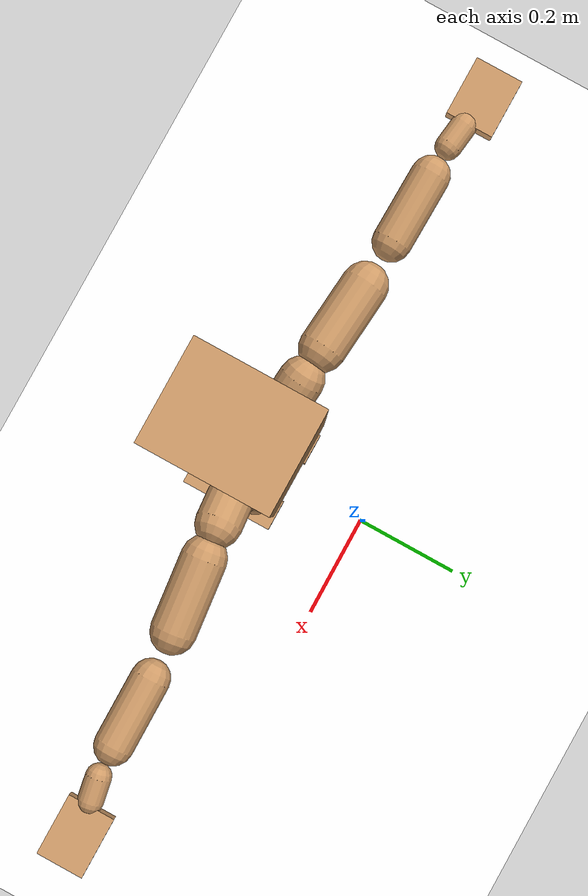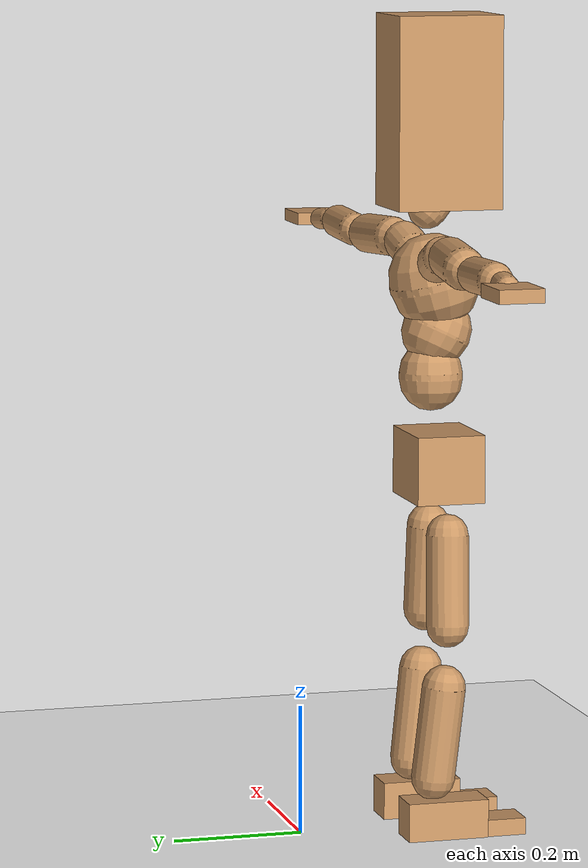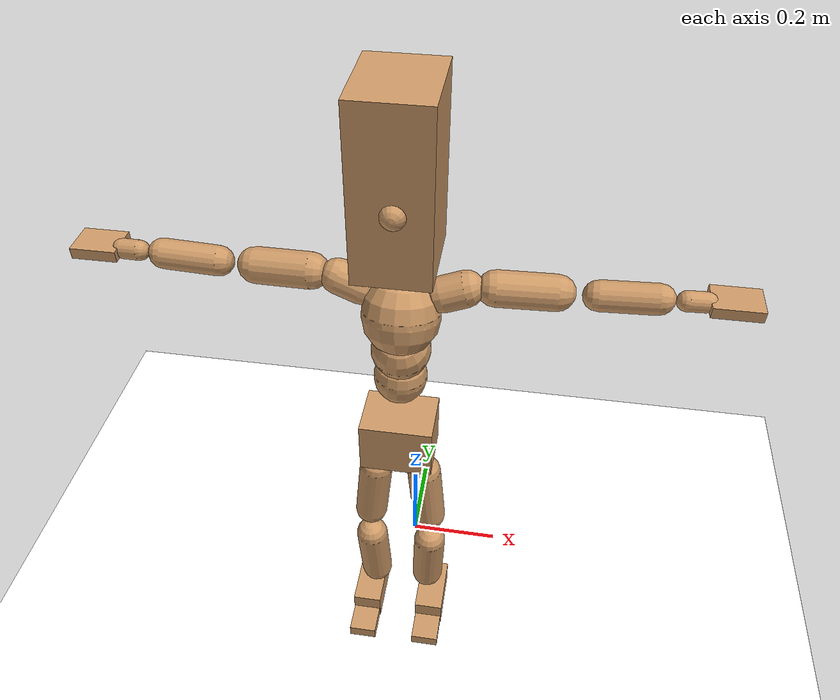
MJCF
<mujoco model="humanoid">
  <option integrator="implicitfast" />

  <visual>
    <global offwidth="1280" offheight="960" />
    <headlight active="1" ambient="0.34 0.34 0.34" diffuse="0.5 0.5 0.5" />
  </visual>

  <default>
    <joint damping="2" stiffness="2" armature="0.01" limited="true" solimplimit="0 .99 .01" />
    <geom condim="1" friction="0.7 0.005 0.0001" solimp=".99 .99 .003" solref="0.015 1" margin="0.001" rgba="0.8 0.6 .4 1" />
    <default class="smplcontact">
      <geom condim="3" friction="1. 0.005 0.0001" solref="0.015 1" solimp="0.98 0.98 0.001" priority="1" />
    </default>
    <default class="stiff_medium">
      <joint stiffness="10" />
    </default>
    <default class="stiff_medium_higher">
      <joint stiffness="50" />
    </default>
    <default class="stiff_high">
      <joint stiffness="100" />
    </default>
  </default>

  <asset>
    <texture type="skybox" builtin="gradient" rgb1="0.99 0.99 0.99" rgb2="0.608 0.828 0.892" width="100" />
    <texture builtin="flat" height="1278" mark="cross" markrgb="1 1 1" name="texgeom" random="0.01" rgb1="0.8 0.6 0.4" rgb2="0.8 0.6 0.4" type="cube" width="127" />
    <texture name="texplane" type="2d" builtin="checker" markrgb="1 1 1" rgb1="0.756 0.772 0.76" rgb2="0.6 0.6 0.6" width="100" height="100" />
    <material name="MatPlane" reflectance="0.5" texture="texplane" texrepeat="1 1" texuniform="true" />
    <material name="geom" texture="texgeom" texuniform="true" />
  </asset>

  <worldbody>
    <light name="tracking_light" pos="0 0 7" dir="0 0 -1" directional="true" cutoff="100" exponent="1" diffuse="1 1 1" specular="0.1 0.1 0.1" mode="trackcom" />
    <camera name="back" pos="0 3 2.4" xyaxes="-1 0 0 0 -1 2" mode="trackcom" />
    <camera name="side" pos="-3 0 2.4" xyaxes="0 -1 0 1 0 2" mode="trackcom" />
    <camera name="front_side" pos="-2.8 -2.8 0.8" xyaxes="0.5 -0.5 0 0.1 0.1 1" mode="trackcom" />
    <geom condim="3" name="floor" pos="0 0 0" rgba="1 1 1 1" size="100 100 .2" type="plane" material="MatPlane" />
    <body name="Pelvis" pos="-0.0018 -0.2233 0.57723" euler="90 0 0">
      <site name="Pelvis" size="0.01" />
      <freejoint name="Pelvis" />
      <geom type="box" pos="0 -0.00879221 -0.00352" size="0.068416 0.0524626 0.05312" quat="1.0000 0.0000 0.0000 0.0000" density="3165.830099" name="Pelvis" />
      <body name="L_Hip" pos="0.04448 -0.0664139 -0.004352">
        <joint name="L_Hip_x" type="hinge" pos="0 0 0" axis="1 0 0" stiffness="10" range="-160.0 22.92" class="stiff_medium" damping="15" />
        <joint name="L_Hip_y" type="hinge" pos="0 0 0" axis="0 1 0" stiffness="10" range="-70.0 70.0" class="stiff_medium" damping="10" />
        <joint name="L_Hip_z" type="hinge" pos="0 0 0" axis="0 0 1" stiffness="10" range="-28.65 90.0" class="stiff_medium" damping="10" />
        <geom type="capsule" density="2040.816327" fromto="0.00415456 -0.0452039 -0.000542401 0.0165102 -0.180935 -0.00216973" size="0.0335175" name="L_Hip" />
        <body name="L_Knee" pos="0.0206648 -0.226139 -0.00271213">
          <joint name="L_Knee_x" type="hinge" pos="0 0 0" axis="1 0 0" range="-5.16 171.89" damping="8" />
          <joint name="L_Knee_y" type="hinge" pos="0 0 0" axis="0 1 0" range="-4.58 6.88" damping="8" />
          <joint name="L_Knee_z" type="hinge" pos="0 0 0" axis="0 0 1" range="-6.88 4.58" damping="8" />
          <geom type="capsule" density="1234.567901" fromto="-0.00162676 -0.0479762 -0.00524247 -0.00656901 -0.191904 -0.0210939" size="0.033542" name="L_Knee" />
          <body name="L_Ankle" pos="-0.00819577 -0.23988 -0.0263363">
            <joint name="L_Ankle_x" type="hinge" pos="0 0 0" axis="1 0 0" range="-45.84 45.84" class="stiff_medium" damping="6" />
            <joint name="L_Ankle_y" type="hinge" pos="0 0 0" axis="0 1 0" range="-74.48 22.92" class="stiff_medium" damping="3" />
            <joint name="L_Ankle_z" type="hinge" pos="0 0 0" axis="0 0 1" range="-4.58 4.58" class="stiff_medium" damping="6" />
            <geom type="box" pos="0.0145625 -0.0149375 0.017673" size="0.0301875 0.029 0.0620746" quat="1.0000 0.0000 0.0000 0.0000" density="449.071558" name="L_Ankle" class="smplcontact" />
            <body name="L_Toe" pos="0.0165 -0.034875 0.0871235">
              <joint name="L_Toe_x" type="hinge" pos="0 0 0" axis="1 0 0" range="-91.67 22.92" />
              <joint name="L_Toe_y" type="hinge" pos="0 0 0" axis="0 1 0" range="-4.58 4.58" />
              <joint name="L_Toe_z" type="hinge" pos="0 0 0" axis="0 0 1" range="-4.58 4.58" />
              <geom type="box" pos="-0.0018 0.0033 0.0181112" size="0.02868 0.012 0.0362223" quat="1.0000 0.0000 0.0000 0.0000" density="423.206892" name="L_Toe" class="smplcontact" />
            </body>
          </body>
        </body>
      </body>
      <body name="R_Hip" pos="-0.043328 -0.0657599 -0.002752">
        <joint name="R_Hip_x" type="hinge" pos="0 0 0" axis="1 0 0" stiffness="10" range="-160.0 22.92" class="stiff_medium" damping="15" />
        <joint name="R_Hip_y" type="hinge" pos="0 0 0" axis="0 1 0" stiffness="10" range="-70.0 70.0" class="stiff_medium" damping="10" />
        <joint name="R_Hip_z" type="hinge" pos="0 0 0" axis="0 0 1" stiffness="10" range="-90.0 28.65" class="stiff_medium" damping="10" />
        <geom type="capsule" density="2040.816327" fromto="-0.0046369 -0.0461081 -0.00108293 -0.0184391 -0.184491 -0.00427731" size="0.033027" name="R_Hip" />
        <body name="R_Knee" pos="-0.023076 -0.230599 -0.00536024">
          <joint name="R_Knee_x" type="hinge" pos="0 0 0" axis="1 0 0" range="-5.16 171.89" damping="8" />
          <joint name="R_Knee_y" type="hinge" pos="0 0 0" axis="0 1 0" range="-6.88 4.58" damping="8" />
          <joint name="R_Knee_z" type="hinge" pos="0 0 0" axis="0 0 1" range="-4.58 6.88" damping="8" />
          <geom type="capsule" density="1234.567901" fromto="0.00192981 -0.0480361 -0.00512414 0.00759532 -0.192085 -0.0203728" size="0.033542" name="R_Knee" />
          <body name="R_Ankle" pos="0.00952513 -0.240121 -0.0254969">
            <joint name="R_Ankle_x" type="hinge" pos="0 0 0" axis="1 0 0" range="-45.84 45.84" class="stiff_medium" damping="6" />
            <joint name="R_Ankle_y" type="hinge" pos="0 0 0" axis="0 1 0" range="-22.92 74.48" class="stiff_medium" damping="3" />
            <joint name="R_Ankle_z" type="hinge" pos="0 0 0" axis="0 0 1" range="-4.58 4.58" class="stiff_medium" damping="6" />
            <geom type="box" pos="-0.01325 -0.010875 0.0186954" size="0.0301875 0.029875 0.06317" quat="1.0000 0.0000 0.0000 0.0000" density="434.700981" name="R_Ankle" class="smplcontact" />
            <body name="R_Toe" pos="-0.015875 -0.0300625 0.0900446">
              <joint name="R_Toe_x" type="hinge" pos="0 0 0" axis="1 0 0" range="-91.67 22.92" />
              <joint name="R_Toe_y" type="hinge" pos="0 0 0" axis="0 1 0" range="-4.58 4.58" />
              <joint name="R_Toe_z" type="hinge" pos="0 0 0" axis="0 0 1" range="-4.58 4.58" />
              <geom type="box" pos="0.00252 0.0027 0.0165776" size="0.02874 0.01296 0.0360033" quat="1.0000 0.0000 0.0000 0.0000" density="407.384095" name="R_Toe" class="smplcontact" />
            </body>
          </body>
        </body>
      </body>
      <body name="Torso" pos="-0.0016 0.0792026 -0.017088">
        <joint name="Torso_x" type="hinge" pos="0 0 0" axis="1 0 0" range="-25.78 57.3" class="stiff_medium" damping="15" />
        <joint name="Torso_y" type="hinge" pos="0 0 0" axis="0 1 0" range="-57.3 57.3" class="stiff_high" damping="20" />
        <joint name="Torso_z" type="hinge" pos="0 0 0" axis="0 0 1" range="-34.38 34.38" class="stiff_high" damping="20" />
        <geom type="capsule" density="2040.816327" fromto="0.00181683 0.0447999 0.000363366 0.00218524 0.054747 0.000437048" size="0.0488315" name="Torso" />
        <body name="Spine" pos="0.00400245 0.0996206 0.00080049">
          <joint name="Spine_x" type="hinge" pos="0 0 0" axis="1 0 0" stiffness="10" range="-25.78 57.3" class="stiff_medium" damping="15" />
          <joint name="Spine_y" type="hinge" pos="0 0 0" axis="0 1 0" stiffness="10" range="-57.3 57.3" class="stiff_high" damping="8" />
          <joint name="Spine_z" type="hinge" pos="0 0 0" axis="0 0 1" stiffness="20" range="-34.38 34.38" class="stiff_high" damping="12" />
          <geom type="capsule" density="2040.816327" fromto="0.000507728 0.0175331 0.00840693 0.00058141 0.0214383 0.0103227" size="0.0532275" name="Spine" />
          <body name="Chest" pos="0.00108914 0.0389713 0.0187296">
            <joint name="Chest_x" type="hinge" pos="0 0 0" axis="1 0 0" stiffness="10" range="-25.78 57.3" class="stiff_medium" damping="15" />
            <joint name="Chest_y" type="hinge" pos="0 0 0" axis="0 1 0" stiffness="10" range="-57.3 57.3" class="stiff_high" damping="8" />
            <joint name="Chest_z" type="hinge" pos="0 0 0" axis="0 0 1" stiffness="20" range="-34.38 34.38" class="stiff_high" damping="12" />
            <geom type="capsule" density="2040.816327" fromto="-0.000639882 0.0502476 -0.0127624 -0.000713564 0.0613737 -0.015636" size="0.068637" name="Chest" />
            <body name="Neck" pos="-0.00199039 0.157452 -0.0322097">
              <joint name="Neck_x" type="hinge" pos="0 0 0" axis="1 0 0" range="-28.65 57.3" class="stiff_medium_higher" damping="10" />
              <joint name="Neck_y" type="hinge" pos="0 0 0" axis="0 1 0" range="-40.11 40.11" class="stiff_medium_higher" damping="10" />
              <joint name="Neck_z" type="hinge" pos="0 0 0" axis="0 0 1" range="-40.11 40.11" class="stiff_medium_higher" damping="10" />
              <geom type="capsule" density="1000" fromto="0.000731506 0.00949427 0.00752121 0.0029954 0.0379755 0.0300141" size="0.030302" name="Neck" />
              <body name="Head" pos="0.00379629 0.0474683 0.0374646">
                <joint name="Head_x" type="hinge" pos="0 0 0" axis="1 0 0" range="-28.65 57.3" class="stiff_medium_higher" damping="2" />
                <joint name="Head_y" type="hinge" pos="0 0 0" axis="0 1 0" range="-40.11 40.11" class="stiff_medium_higher" damping="2" />
                <joint name="Head_z" type="hinge" pos="0 0 0" axis="0 0 1" range="-40.11 40.11" class="stiff_medium_higher" damping="2" />
                <geom type="box" pos="-0.00449148 0.111241 -0.012405" size="0.0648056 0.146543 0.0812744" quat="1.0000 0.0000 0.0000 0.0000" density="1018.069894" name="Head" />
                <geom type="capsule" name="nose" size="0.021388 0.010694" pos="0 0.0888908 0.05347" quat="1 0 0 0" mass="0" contype="0" conaffinity="0" />
              </body>
            </body>
            <body name="L_Thorax" pos="0.0539362 0.0896794 -0.0249895">
              <joint name="L_Thorax_x" type="hinge" pos="0 0 0" axis="1 0 0" range="-10.89 4.58" class="stiff_medium_higher" damping="20" />
              <joint name="L_Thorax_y" type="hinge" pos="0 0 0" axis="0 1 0" range="-28.65 17.19" class="stiff_medium_higher" damping="20" />
              <joint name="L_Thorax_z" type="hinge" pos="0 0 0" axis="0 0 1" range="-31.51 40.11" class="stiff_medium_higher" damping="20" />
              <geom type="capsule" density="1000" fromto="0.0130442 0.00437195 -0.00128631 0.0521757 0.0174875 -0.0050848" size="0.0314476" name="L_Thorax" />
              <body name="L_Shoulder" pos="0.0652199 0.0218594 -0.00637111">
                <joint name="L_Shoulder_x" type="hinge" pos="0 0 0" axis="1 0 0" range="-97.4 97.4" class="stiff_medium" damping="6" />
                <joint name="L_Shoulder_y" type="hinge" pos="0 0 0" axis="0 1 0" range="-108.86 80.21" class="stiff_medium" damping="6" />
                <joint name="L_Shoulder_z" type="hinge" pos="0 0 0" axis="0 0 1" range="-97.4 85.94" class="stiff_medium" damping="6" />
                <geom type="capsule" density="1000" fromto="0.0339879 -0.00169892 -0.0036016 0.136016 -0.00667592 -0.0144069" size="0.03102" name="L_Shoulder" />
                <body name="L_Elbow" pos="0.170004 -0.00837484 -0.0180085">
                  <joint name="L_Elbow_x" type="hinge" pos="0 0 0" axis="1 0 0" range="-17.19 4.58" damping="5" />
                  <joint name="L_Elbow_y" type="hinge" pos="0 0 0" axis="0 1 0" range="-180.0 17.19" damping="5" />
                  <joint name="L_Elbow_z" type="hinge" pos="0 0 0" axis="0 0 1" range="-100.84 4.58" damping="5" />
                  <geom type="capsule" density="1000" fromto="0.0326124 0.00117875 -0.000131134 0.130581 0.00471504 -0.000589542" size="0.026325" name="L_Elbow" />
                  <body name="L_Wrist" pos="0.163193 0.00589379 -0.000785676">
                    <joint name="L_Wrist_x" type="hinge" pos="0 0 0" axis="1 0 0" range="-180.0 22.92" />
                    <joint name="L_Wrist_y" type="hinge" pos="0 0 0" axis="0 1 0" range="-17.19 17.19" />
                    <joint name="L_Wrist_z" type="hinge" pos="0 0 0" axis="0 0 1" range="-22.92 22.92" />
                    <geom type="capsule" density="1000" fromto="0.0110015 -0.0010512 -0.00196455 0.0440068 -0.00426005 -0.00785836" size="0.0175409" name="L_Wrist" class="smplcontact" />
                    <body name="L_Hand" pos="0.0550075 -0.00536634 -0.0097676">
                      <joint name="L_Hand_x" type="hinge" pos="0 0 0" axis="1 0 0" range="-17.19 17.19" />
                      <joint name="L_Hand_y" type="hinge" pos="0 0 0" axis="0 1 0" range="-51.57 51.57" />
                      <joint name="L_Hand_z" type="hinge" pos="0 0 0" axis="0 0 1" range="-91.67 91.67" />
                      <geom type="box" pos="0.0358228 0.000612 -0.0035496" size="0.0425078 0.0096696 0.0329256" quat="1.0000 0.0000 0.0000 0.0000" density="400.552564" name="L_Hand" class="smplcontact" />
                    </body>
                  </body>
                </body>
              </body>
            </body>
            <body name="R_Thorax" pos="-0.0560746 0.0876602 -0.0280635">
              <joint name="R_Thorax_x" type="hinge" pos="0 0 0" axis="1 0 0" range="-10.89 4.58" class="stiff_medium_higher" damping="20" />
              <joint name="R_Thorax_y" type="hinge" pos="0 0 0" axis="0 1 0" range="-17.19 28.65" class="stiff_medium_higher" damping="20" />
              <joint name="R_Thorax_z" type="hinge" pos="0 0 0" axis="0 0 1" range="-40.11 31.51" class="stiff_medium_higher" damping="20" />
              <geom type="capsule" density="1000" fromto="-0.0137602 0.00465841 -0.00129379 -0.0550419 0.018634 -0.00523561" size="0.030844" name="R_Thorax" />
              <body name="R_Shoulder" pos="-0.0688055 0.0233539 -0.00652973">
                <joint name="R_Shoulder_x" type="hinge" pos="0 0 0" axis="1 0 0" range="-97.4 97.4" class="stiff_medium" damping="6" />
                <joint name="R_Shoulder_y" type="hinge" pos="0 0 0" axis="0 1 0" range="-80.21 108.86" class="stiff_medium" damping="6" />
                <joint name="R_Shoulder_z" type="hinge" pos="0 0 0" axis="0 0 1" range="-85.94 97.4" class="stiff_medium" damping="6" />
                <geom type="capsule" density="1000" fromto="-0.0332021 -0.00176614 -0.00281382 -0.132939 -0.00700508 -0.0111961" size="0.03186" name="R_Shoulder" />
                <body name="R_Elbow" pos="-0.16614 -0.00871121 -0.0140099">
                  <joint name="R_Elbow_x" type="hinge" pos="0 0 0" axis="1 0 0" range="-17.19 4.58" damping="5" />
                  <joint name="R_Elbow_y" type="hinge" pos="0 0 0" axis="0 1 0" range="-17.19 180.0" damping="5" />
                  <joint name="R_Elbow_z" type="hinge" pos="0 0 0" axis="0 0 1" range="-4.58 100.84" damping="5" />
                  <geom type="capsule" density="1000" fromto="-0.0334638 0.00104747 -0.000720362 -0.133724 0.00405987 -0.00288143" size="0.02652" name="R_Elbow" />
                  <body name="R_Wrist" pos="-0.167188 0.00510734 -0.00366679">
                    <joint name="R_Wrist_x" type="hinge" pos="0 0 0" axis="1 0 0" range="-180.0 22.92" />
                    <joint name="R_Wrist_y" type="hinge" pos="0 0 0" axis="0 1 0" range="-17.19 17.19" />
                    <joint name="R_Wrist_z" type="hinge" pos="0 0 0" axis="0 0 1" range="-22.92 22.92" />
                    <geom type="capsule" density="1000" fromto="-0.0110675 -0.00078905 -0.00137139 -0.0443348 -0.00321206 -0.00543157" size="0.0179822" name="R_Wrist" class="smplcontact" />
                    <body name="R_Hand" pos="-0.0554011 -0.00400102 -0.00674765">
                      <joint name="R_Hand_x" type="hinge" pos="0 0 0" axis="1 0 0" range="-17.19 17.19" />
                      <joint name="R_Hand_y" type="hinge" pos="0 0 0" axis="0 1 0" range="-51.57 51.57" />
                      <joint name="R_Hand_z" type="hinge" pos="0 0 0" axis="0 0 1" range="-91.67 91.67" />
                      <geom type="box" pos="-0.0335703 -0.0005508 -0.0048348" size="0.0413452 0.0100368 0.0334152" quat="1.0000 0.0000 0.0000 0.0000" density="403.679611" name="R_Hand" class="smplcontact" />
                    </body>
                  </body>
                </body>
              </body>
            </body>
          </body>
        </body>
      </body>
    </body>
  </worldbody>
  <actuator>
    <general name="L_Hip_x" joint="L_Hip_x" biastype="affine" gainprm="287.33006409732246" biasprm="-215.3247604770444 -180 -2.0" ctrllimited="true" ctrlrange="-1 1" forcerange="-360 360" />
    <general name="L_Hip_y" joint="L_Hip_y" biastype="affine" gainprm="219.9114857512855" biasprm="0.0 -180 -2.0" ctrllimited="true" ctrlrange="-1 1" forcerange="-360 360" />
    <general name="L_Hip_z" joint="L_Hip_z" biastype="affine" gainprm="186.3749841742145" biasprm="96.3683546488669 -180 -2.0" ctrllimited="true" ctrlrange="-1 1" forcerange="-360 360" />
    <general name="L_Knee_x" joint="L_Knee_x" biastype="affine" gainprm="278.10948965903646" biasprm="261.8988715665131 -180 -2.0" ctrllimited="true" ctrlrange="-1 1" forcerange="-360 360" />
    <general name="L_Knee_y" joint="L_Knee_y" biastype="affine" gainprm="18.001325905069514" biasprm="3.612831551628262 -180 -2.0" ctrllimited="true" ctrlrange="-1 1" forcerange="-360 360" />
    <general name="L_Knee_z" joint="L_Knee_z" biastype="affine" gainprm="18.001325905069514" biasprm="-3.612831551628262 -180 -2.0" ctrllimited="true" ctrlrange="-1 1" forcerange="-360 360" />
    <general name="L_Ankle_x" joint="L_Ankle_x" biastype="affine" gainprm="72.00530362027807" biasprm="0.0 -90 -2.0" ctrllimited="true" ctrlrange="-1 1" forcerange="-180 180" />
    <general name="L_Ankle_y" joint="L_Ankle_y" biastype="affine" gainprm="76.49778111491148" biasprm="-40.49512930477244 -90 -2.0" ctrllimited="true" ctrlrange="-1 1" forcerange="-180 180" />
    <general name="L_Ankle_z" joint="L_Ankle_z" biastype="affine" gainprm="7.1942471767206255" biasprm="0.0 -90 -2.0" ctrllimited="true" ctrlrange="-1 1" forcerange="-180 180" />
    <general name="L_Toe_x" joint="L_Toe_x" biastype="affine" gainprm="71.99902043497087" biasprm="-43.19689898685965 -72 -0.8" ctrllimited="true" ctrlrange="-1 1" forcerange="-144 144" />
    <general name="L_Toe_y" joint="L_Toe_y" biastype="affine" gainprm="5.755397741376501" biasprm="0.0 -72 -0.8" ctrllimited="true" ctrlrange="-1 1" forcerange="-144 144" />
    <general name="L_Toe_z" joint="L_Toe_z" biastype="affine" gainprm="5.755397741376501" biasprm="0.0 -72 -0.8" ctrllimited="true" ctrlrange="-1 1" forcerange="-144 144" />
    <general name="R_Hip_x" joint="R_Hip_x" biastype="affine" gainprm="287.33006409732246" biasprm="-215.3247604770444 -180 -2.0" ctrllimited="true" ctrlrange="-1 1" forcerange="-360 360" />
    <general name="R_Hip_y" joint="R_Hip_y" biastype="affine" gainprm="219.9114857512855" biasprm="0.0 -180 -2.0" ctrllimited="true" ctrlrange="-1 1" forcerange="-360 360" />
    <general name="R_Hip_z" joint="R_Hip_z" biastype="affine" gainprm="186.3749841742145" biasprm="-96.3683546488669 -180 -2.0" ctrllimited="true" ctrlrange="-1 1" forcerange="-360 360" />
    <general name="R_Knee_x" joint="R_Knee_x" biastype="affine" gainprm="278.10948965903646" biasprm="261.8988715665131 -180 -2.0" ctrllimited="true" ctrlrange="-1 1" forcerange="-360 360" />
    <general name="R_Knee_y" joint="R_Knee_y" biastype="affine" gainprm="18.001325905069514" biasprm="-3.612831551628262 -180 -2.0" ctrllimited="true" ctrlrange="-1 1" forcerange="-360 360" />
    <general name="R_Knee_z" joint="R_Knee_z" biastype="affine" gainprm="18.001325905069514" biasprm="3.612831551628262 -180 -2.0" ctrllimited="true" ctrlrange="-1 1" forcerange="-360 360" />
    <general name="R_Ankle_x" joint="R_Ankle_x" biastype="affine" gainprm="72.00530362027807" biasprm="0.0 -90 -2.0" ctrllimited="true" ctrlrange="-1 1" forcerange="-180 180" />
    <general name="R_Ankle_y" joint="R_Ankle_y" biastype="affine" gainprm="76.49778111491148" biasprm="40.49512930477244 -90 -2.0" ctrllimited="true" ctrlrange="-1 1" forcerange="-180 180" />
    <general name="R_Ankle_z" joint="R_Ankle_z" biastype="affine" gainprm="7.1942471767206255" biasprm="0.0 -90 -2.0" ctrllimited="true" ctrlrange="-1 1" forcerange="-180 180" />
    <general name="R_Toe_x" joint="R_Toe_x" biastype="affine" gainprm="71.99902043497087" biasprm="-43.19689898685965 -72 -0.8" ctrllimited="true" ctrlrange="-1 1" forcerange="-144 144" />
    <general name="R_Toe_y" joint="R_Toe_y" biastype="affine" gainprm="5.755397741376501" biasprm="0.0 -72 -0.8" ctrllimited="true" ctrlrange="-1 1" forcerange="-144 144" />
    <general name="R_Toe_z" joint="R_Toe_z" biastype="affine" gainprm="5.755397741376501" biasprm="0.0 -72 -0.8" ctrllimited="true" ctrlrange="-1 1" forcerange="-144 144" />
    <general name="Torso_x" joint="Torso_x" biastype="affine" gainprm="174.00234510682668" biasprm="66.0153336274335 -240 -4.0" ctrllimited="true" ctrlrange="-1 1" forcerange="-360 360" />
    <general name="Torso_y" joint="Torso_y" biastype="affine" gainprm="240.0176787342602" biasprm="0.0 -240 -4.0" ctrllimited="true" ctrlrange="-1 1" forcerange="-360 360" />
    <general name="Torso_z" joint="Torso_z" biastype="affine" gainprm="144.01060724055614" biasprm="0.0 -240 -4.0" ctrllimited="true" ctrlrange="-1 1" forcerange="-360 360" />
    <general name="Spine_x" joint="Spine_x" biastype="affine" gainprm="174.00234510682668" biasprm="66.0153336274335 -240 -4.0" ctrllimited="true" ctrlrange="-1 1" forcerange="-360 360" />
    <general name="Spine_y" joint="Spine_y" biastype="affine" gainprm="240.0176787342602" biasprm="0.0 -240 -4.0" ctrllimited="true" ctrlrange="-1 1" forcerange="-360 360" />
    <general name="Spine_z" joint="Spine_z" biastype="affine" gainprm="144.01060724055614" biasprm="0.0 -240 -4.0" ctrllimited="true" ctrlrange="-1 1" forcerange="-360 360" />
    <general name="Chest_x" joint="Chest_x" biastype="affine" gainprm="174.00234510682668" biasprm="66.0153336274335 -240 -4.0" ctrllimited="true" ctrlrange="-1 1" forcerange="-360 360" />
    <general name="Chest_y" joint="Chest_y" biastype="affine" gainprm="240.0176787342602" biasprm="0.0 -240 -4.0" ctrllimited="true" ctrlrange="-1 1" forcerange="-360 360" />
    <general name="Chest_z" joint="Chest_z" biastype="affine" gainprm="144.01060724055614" biasprm="0.0 -240 -4.0" ctrllimited="true" ctrlrange="-1 1" forcerange="-360 360" />
    <general name="Neck_x" joint="Neck_x" biastype="affine" gainprm="27.00198885760427" biasprm="9.000662952534757 -36 -0.8" ctrllimited="true" ctrlrange="-1 1" forcerange="-72 72" />
    <general name="Neck_y" joint="Neck_y" biastype="affine" gainprm="25.20185626709732" biasprm="0.0 -36 -0.8" ctrllimited="true" ctrlrange="-1 1" forcerange="-72 72" />
    <general name="Neck_z" joint="Neck_z" biastype="affine" gainprm="25.20185626709732" biasprm="0.0 -36 -0.8" ctrllimited="true" ctrlrange="-1 1" forcerange="-72 72" />
    <general name="Head_x" joint="Head_x" biastype="affine" gainprm="18.001325905069514" biasprm="6.000441968356505 -24 -0.8" ctrllimited="true" ctrlrange="-1 1" forcerange="-48 48" />
    <general name="Head_y" joint="Head_y" biastype="affine" gainprm="16.801237511398213" biasprm="0.0 -24 -0.8" ctrllimited="true" ctrlrange="-1 1" forcerange="-48 48" />
    <general name="Head_z" joint="Head_z" biastype="affine" gainprm="16.801237511398213" biasprm="0.0 -24 -0.8" ctrllimited="true" ctrlrange="-1 1" forcerange="-48 48" />
    <general name="L_Thorax_x" joint="L_Thorax_x" biastype="affine" gainprm="16.200146117011364" biasprm="-6.6078165480505335 -120 -1.6" ctrllimited="true" ctrlrange="-1 1" forcerange="-240 240" />
    <general name="L_Thorax_y" joint="L_Thorax_y" biastype="affine" gainprm="48.00353574685204" biasprm="-12.00088393671301 -120 -1.6" ctrllimited="true" ctrlrange="-1 1" forcerange="-240 240" />
    <general name="L_Thorax_z" joint="L_Thorax_z" biastype="affine" gainprm="75.00028861670033" biasprm="9.00589894029074 -120 -1.6" ctrllimited="true" ctrlrange="-1 1" forcerange="-240 240" />
    <general name="L_Shoulder_x" joint="L_Shoulder_x" biastype="affine" gainprm="81.5976331892389" biasprm="0.0 -48 -1.6" ctrllimited="true" ctrlrange="-1 1" forcerange="-96 96" />
    <general name="L_Shoulder_y" joint="L_Shoulder_y" biastype="affine" gainprm="79.19745640189629" biasprm="-12.00088393671301 -48 -1.6" ctrllimited="true" ctrlrange="-1 1" forcerange="-96 96" />
    <general name="L_Shoulder_z" joint="L_Shoulder_z" biastype="affine" gainprm="76.79727961455369" biasprm="-4.800353574685214 -48 -1.6" ctrllimited="true" ctrlrange="-1 1" forcerange="-96 96" />
    <general name="L_Elbow_x" joint="L_Elbow_x" biastype="affine" gainprm="13.67849441372996" biasprm="-7.923096672353461 -72 -0.8" ctrllimited="true" ctrlrange="-1 1" forcerange="-144 144" />
    <general name="L_Elbow_y" joint="L_Elbow_y" biastype="affine" gainprm="123.89813107227425" biasprm="-102.29653998619085 -72 -0.8" ctrllimited="true" ctrlrange="-1 1" forcerange="-144 144" />
    <general name="L_Elbow_z" joint="L_Elbow_z" biastype="affine" gainprm="66.23733950828719" biasprm="-60.4819417669107 -72 -0.8" ctrllimited="true" ctrlrange="-1 1" forcerange="-144 144" />
    <general name="L_Wrist_x" joint="L_Wrist_x" biastype="affine" gainprm="21.24973270888136" biasprm="-16.449379134196157 -12 -0.8" ctrllimited="true" ctrlrange="-1 1" forcerange="-24 24" />
    <general name="L_Wrist_y" joint="L_Wrist_y" biastype="affine" gainprm="3.6002651810139037" biasprm="0.0 -12 -0.8" ctrllimited="true" ctrlrange="-1 1" forcerange="-24 24" />
    <general name="L_Wrist_z" joint="L_Wrist_z" biastype="affine" gainprm="4.800353574685205" biasprm="0.0 -12 -0.8" ctrllimited="true" ctrlrange="-1 1" forcerange="-24 24" />
    <general name="L_Hand_x" joint="L_Hand_x" biastype="affine" gainprm="3.6002651810139037" biasprm="0.0 -12 -0.8" ctrllimited="true" ctrlrange="-1 1" forcerange="-24 24" />
    <general name="L_Hand_y" joint="L_Hand_y" biastype="affine" gainprm="10.800795543041708" biasprm="0.0 -12 -0.8" ctrllimited="true" ctrlrange="-1 1" forcerange="-24 24" />
    <general name="L_Hand_z" joint="L_Hand_z" biastype="affine" gainprm="19.199319903638422" biasprm="0.0 -12 -0.8" ctrllimited="true" ctrlrange="-1 1" forcerange="-24 24" />
    <general name="R_Thorax_x" joint="R_Thorax_x" biastype="affine" gainprm="16.200146117011364" biasprm="-6.6078165480505335 -120 -1.6" ctrllimited="true" ctrlrange="-1 1" forcerange="-240 240" />
    <general name="R_Thorax_y" joint="R_Thorax_y" biastype="affine" gainprm="48.00353574685204" biasprm="12.000883936713002 -120 -1.6" ctrllimited="true" ctrlrange="-1 1" forcerange="-240 240" />
    <general name="R_Thorax_z" joint="R_Thorax_z" biastype="affine" gainprm="75.00028861670033" biasprm="-9.00589894029074 -120 -1.6" ctrllimited="true" ctrlrange="-1 1" forcerange="-240 240" />
    <general name="R_Shoulder_x" joint="R_Shoulder_x" biastype="affine" gainprm="81.5976331892389" biasprm="0.0 -48 -1.6" ctrllimited="true" ctrlrange="-1 1" forcerange="-96 96" />
    <general name="R_Shoulder_y" joint="R_Shoulder_y" biastype="affine" gainprm="79.19745640189629" biasprm="12.00088393671301 -48 -1.6" ctrllimited="true" ctrlrange="-1 1" forcerange="-96 96" />
    <general name="R_Shoulder_z" joint="R_Shoulder_z" biastype="affine" gainprm="76.79727961455369" biasprm="4.800353574685204 -48 -1.6" ctrllimited="true" ctrlrange="-1 1" forcerange="-96 96" />
    <general name="R_Elbow_x" joint="R_Elbow_x" biastype="affine" gainprm="13.67849441372996" biasprm="-7.923096672353461 -72 -0.8" ctrllimited="true" ctrlrange="-1 1" forcerange="-144 144" />
    <general name="R_Elbow_y" joint="R_Elbow_y" biastype="affine" gainprm="123.89813107227425" biasprm="102.29653998619085 -72 -0.8" ctrllimited="true" ctrlrange="-1 1" forcerange="-144 144" />
    <general name="R_Elbow_z" joint="R_Elbow_z" biastype="affine" gainprm="66.23733950828719" biasprm="60.481941766910694 -72 -0.8" ctrllimited="true" ctrlrange="-1 1" forcerange="-144 144" />
    <general name="R_Wrist_x" joint="R_Wrist_x" biastype="affine" gainprm="21.24973270888136" biasprm="-16.449379134196157 -12 -0.8" ctrllimited="true" ctrlrange="-1 1" forcerange="-24 24" />
    <general name="R_Wrist_y" joint="R_Wrist_y" biastype="affine" gainprm="3.6002651810139037" biasprm="0.0 -12 -0.8" ctrllimited="true" ctrlrange="-1 1" forcerange="-24 24" />
    <general name="R_Wrist_z" joint="R_Wrist_z" biastype="affine" gainprm="4.800353574685205" biasprm="0.0 -12 -0.8" ctrllimited="true" ctrlrange="-1 1" forcerange="-24 24" />
    <general name="R_Hand_x" joint="R_Hand_x" biastype="affine" gainprm="3.6002651810139037" biasprm="0.0 -12 -0.8" ctrllimited="true" ctrlrange="-1 1" forcerange="-24 24" />
    <general name="R_Hand_y" joint="R_Hand_y" biastype="affine" gainprm="10.800795543041708" biasprm="0.0 -12 -0.8" ctrllimited="true" ctrlrange="-1 1" forcerange="-24 24" />
    <general name="R_Hand_z" joint="R_Hand_z" biastype="affine" gainprm="19.199319903638422" biasprm="0.0 -12 -0.8" ctrllimited="true" ctrlrange="-1 1" forcerange="-24 24" />
  </actuator>
  <contact>
    <exclude body1="Torso" body2="Chest" />
    <exclude body1="Head" body2="Chest" />
    <exclude body1="R_Knee" body2="R_Toe" />
    <exclude body1="R_Knee" body2="L_Ankle" />
    <exclude body1="R_Knee" body2="L_Toe" />
    <exclude body1="L_Knee" body2="L_Toe" />
    <exclude body1="L_Knee" body2="R_Ankle" />
    <exclude body1="L_Knee" body2="R_Toe" />
    <exclude body1="L_Shoulder" body2="Chest" />
    <exclude body1="R_Shoulder" body2="Chest" />
  </contact>
  <sensor>
    <framelinvel name="sensor_Pelvis_framelinvel" objtype="xbody" objname="Pelvis" />
    <framelinvel name="sensor_L_Hip_framelinvel" objtype="xbody" objname="L_Hip" />
    <framelinvel name="sensor_L_Knee_framelinvel" objtype="xbody" objname="L_Knee" />
    <framelinvel name="sensor_L_Ankle_framelinvel" objtype="xbody" objname="L_Ankle" />
    <framelinvel name="sensor_L_Toe_framelinvel" objtype="xbody" objname="L_Toe" />
    <framelinvel name="sensor_R_Hip_framelinvel" objtype="xbody" objname="R_Hip" />
    <framelinvel name="sensor_R_Knee_framelinvel" objtype="xbody" objname="R_Knee" />
    <framelinvel name="sensor_R_Ankle_framelinvel" objtype="xbody" objname="R_Ankle" />
    <framelinvel name="sensor_R_Toe_framelinvel" objtype="xbody" objname="R_Toe" />
    <framelinvel name="sensor_Torso_framelinvel" objtype="xbody" objname="Torso" />
    <framelinvel name="sensor_Spine_framelinvel" objtype="xbody" objname="Spine" />
    <framelinvel name="sensor_Chest_framelinvel" objtype="xbody" objname="Chest" />
    <framelinvel name="sensor_Neck_framelinvel" objtype="xbody" objname="Neck" />
    <framelinvel name="sensor_Head_framelinvel" objtype="xbody" objname="Head" />
    <framelinvel name="sensor_L_Thorax_framelinvel" objtype="xbody" objname="L_Thorax" />
    <framelinvel name="sensor_L_Shoulder_framelinvel" objtype="xbody" objname="L_Shoulder" />
    <framelinvel name="sensor_L_Elbow_framelinvel" objtype="xbody" objname="L_Elbow" />
    <framelinvel name="sensor_L_Wrist_framelinvel" objtype="xbody" objname="L_Wrist" />
    <framelinvel name="sensor_L_Hand_framelinvel" objtype="xbody" objname="L_Hand" />
    <framelinvel name="sensor_R_Thorax_framelinvel" objtype="xbody" objname="R_Thorax" />
    <framelinvel name="sensor_R_Shoulder_framelinvel" objtype="xbody" objname="R_Shoulder" />
    <framelinvel name="sensor_R_Elbow_framelinvel" objtype="xbody" objname="R_Elbow" />
    <framelinvel name="sensor_R_Wrist_framelinvel" objtype="xbody" objname="R_Wrist" />
    <framelinvel name="sensor_R_Hand_framelinvel" objtype="xbody" objname="R_Hand" />
    <frameangvel name="sensor_Pelvis_frameangvel" objtype="xbody" objname="Pelvis" />
    <frameangvel name="sensor_L_Hip_frameangvel" objtype="xbody" objname="L_Hip" />
    <frameangvel name="sensor_L_Knee_frameangvel" objtype="xbody" objname="L_Knee" />
    <frameangvel name="sensor_L_Ankle_frameangvel" objtype="xbody" objname="L_Ankle" />
    <frameangvel name="sensor_L_Toe_frameangvel" objtype="xbody" objname="L_Toe" />
    <frameangvel name="sensor_R_Hip_frameangvel" objtype="xbody" objname="R_Hip" />
    <frameangvel name="sensor_R_Knee_frameangvel" objtype="xbody" objname="R_Knee" />
    <frameangvel name="sensor_R_Ankle_frameangvel" objtype="xbody" objname="R_Ankle" />
    <frameangvel name="sensor_R_Toe_frameangvel" objtype="xbody" objname="R_Toe" />
    <frameangvel name="sensor_Torso_frameangvel" objtype="xbody" objname="Torso" />
    <frameangvel name="sensor_Spine_frameangvel" objtype="xbody" objname="Spine" />
    <frameangvel name="sensor_Chest_frameangvel" objtype="xbody" objname="Chest" />
    <frameangvel name="sensor_Neck_frameangvel" objtype="xbody" objname="Neck" />
    <frameangvel name="sensor_Head_frameangvel" objtype="xbody" objname="Head" />
    <frameangvel name="sensor_L_Thorax_frameangvel" objtype="xbody" objname="L_Thorax" />
    <frameangvel name="sensor_L_Shoulder_frameangvel" objtype="xbody" objname="L_Shoulder" />
    <frameangvel name="sensor_L_Elbow_frameangvel" objtype="xbody" objname="L_Elbow" />
    <frameangvel name="sensor_L_Wrist_frameangvel" objtype="xbody" objname="L_Wrist" />
    <frameangvel name="sensor_L_Hand_frameangvel" objtype="xbody" objname="L_Hand" />
    <frameangvel name="sensor_R_Thorax_frameangvel" objtype="xbody" objname="R_Thorax" />
    <frameangvel name="sensor_R_Shoulder_frameangvel" objtype="xbody" objname="R_Shoulder" />
    <frameangvel name="sensor_R_Elbow_frameangvel" objtype="xbody" objname="R_Elbow" />
    <frameangvel name="sensor_R_Wrist_frameangvel" objtype="xbody" objname="R_Wrist" />
    <frameangvel name="sensor_R_Hand_frameangvel" objtype="xbody" objname="R_Hand" />
    <subtreelinvel name="Chest_subtreelinvel" body="Chest" />
    <gyro name="Pelvis_gyro" site="Pelvis" />
  </sensor>
</mujoco>
